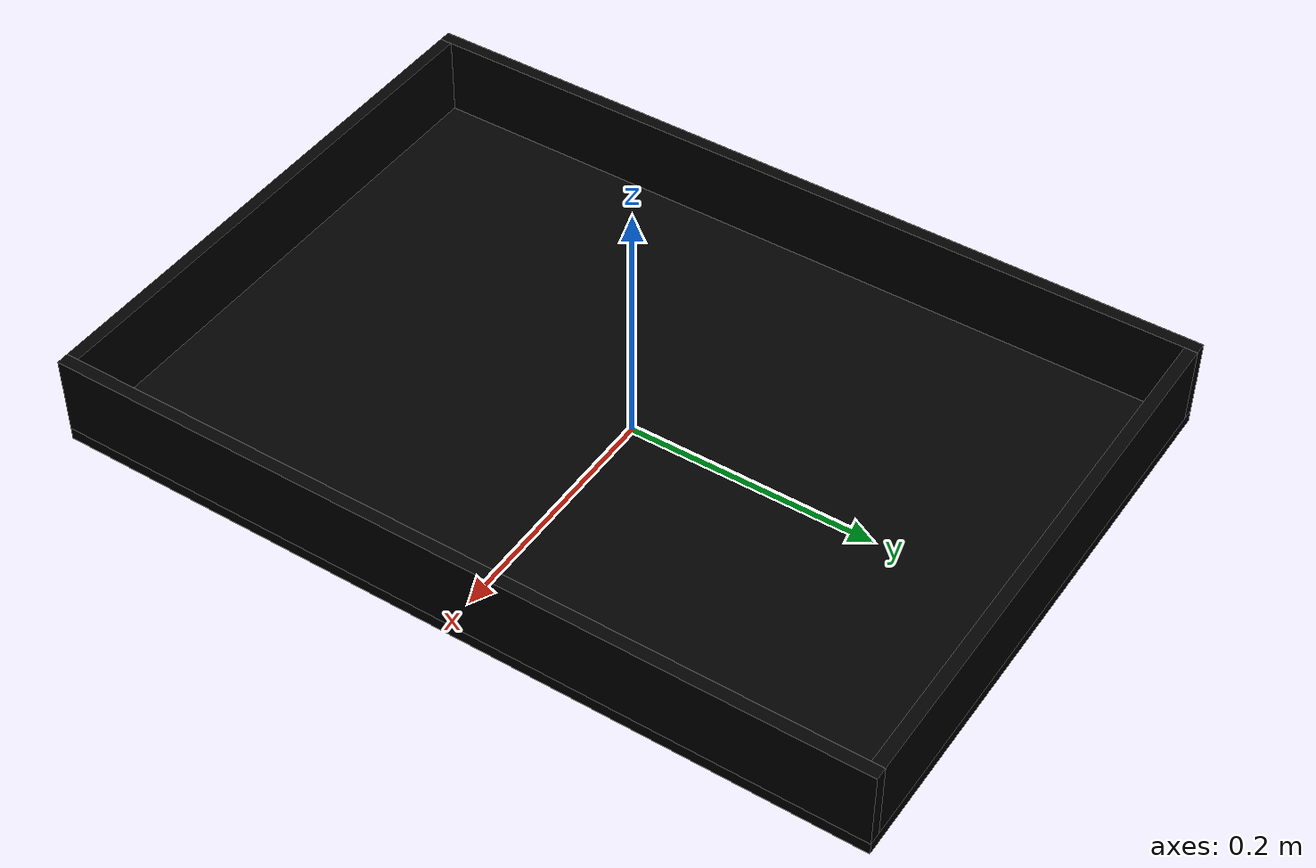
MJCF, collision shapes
<mujoco model="wicker_tray">
  <compiler angle="radian"/>

  <asset>
    <material name="wicker_tray_mat" rgba="0.34 0.18 0.12 1.0" specular="0.3" shininess="0.3"/>
    <mesh name="wicker_tray_visual" file="wicker_tray_visual.obj" scale="1 1 1"/>
  </asset>

  <worldbody>
    <body name="wicker_tray" pos="0 0 0">
      <freejoint name="wicker_tray_joint"/>

      <!-- Collision geometry - hollow tray (floor + 4 walls) -->
      <!-- Floor -->
      <geom name="wicker_tray_floor"
            type="box"
            pos="0 0 0.005"
            size="0.23 0.33 0.005"
            mass="0.2"
            friction="0.8 0.005 0.0001"
            contype="1"
            conaffinity="1"
            rgba="0 0 0 0"/>

      <!-- Left wall (negative X) -->
      <geom name="wicker_tray_wall_left"
            type="box"
            pos="-0.225 0 0.0425"
            size="0.005 0.33 0.0325"
            mass="0.075"
            friction="0.8 0.005 0.0001"
            contype="1"
            conaffinity="1"
            rgba="0 0 0 0"/>

      <!-- Right wall (positive X) -->
      <geom name="wicker_tray_wall_right"
            type="box"
            pos="0.225 0 0.0425"
            size="0.005 0.33 0.0325"
            mass="0.075"
            friction="0.8 0.005 0.0001"
            contype="1"
            conaffinity="1"
            rgba="0 0 0 0"/>

      <!-- Front wall (negative Y) -->
      <geom name="wicker_tray_wall_front"
            type="box"
            pos="0 -0.325 0.0425"
            size="0.22 0.005 0.0325"
            mass="0.075"
            friction="0.8 0.005 0.0001"
            contype="1"
            conaffinity="1"
            rgba="0 0 0 0"/>

      <!-- Back wall (positive Y) -->
      <geom name="wicker_tray_wall_back"
            type="box"
            pos="0 0.325 0.0425"
            size="0.22 0.005 0.0325"
            mass="0.075"
            friction="0.8 0.005 0.0001"
            contype="1"
            conaffinity="1"
            rgba="0 0 0 0"/>

      <!-- Visual mesh -->
      <geom name="wicker_tray_visual"
            type="mesh"
            mesh="wicker_tray_visual"
            material="wicker_tray_mat"
            contype="0"
            conaffinity="0"/>
    </body>
  </worldbody>
</mujoco>
